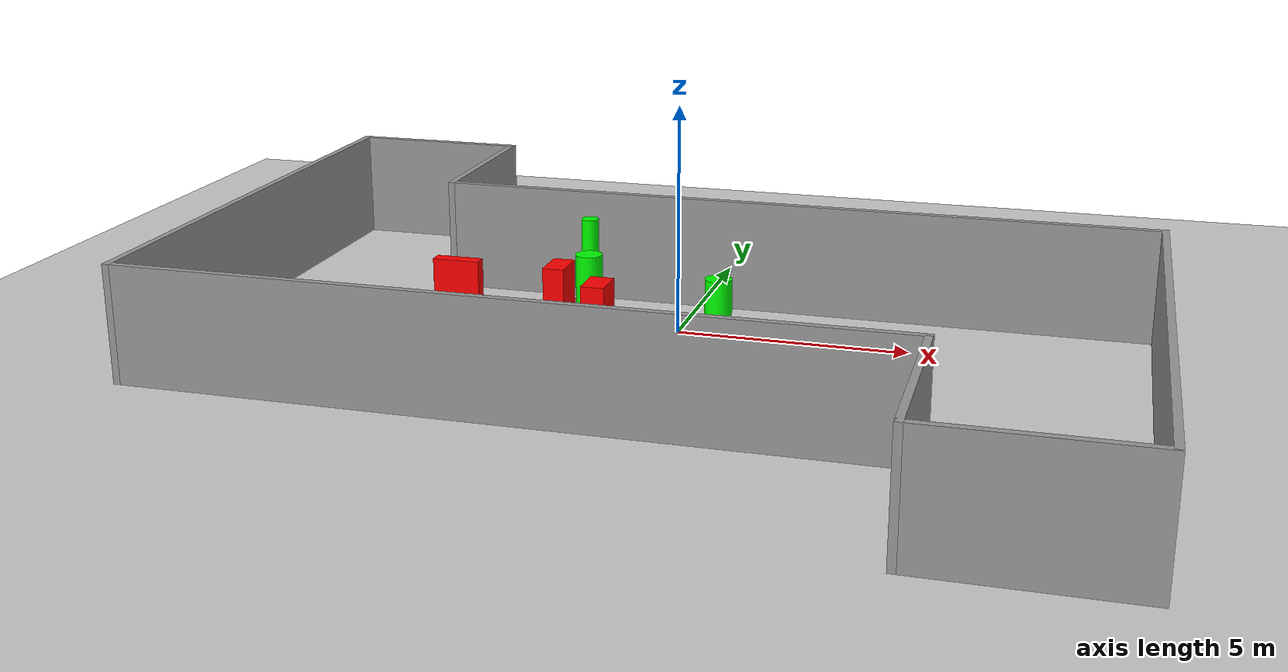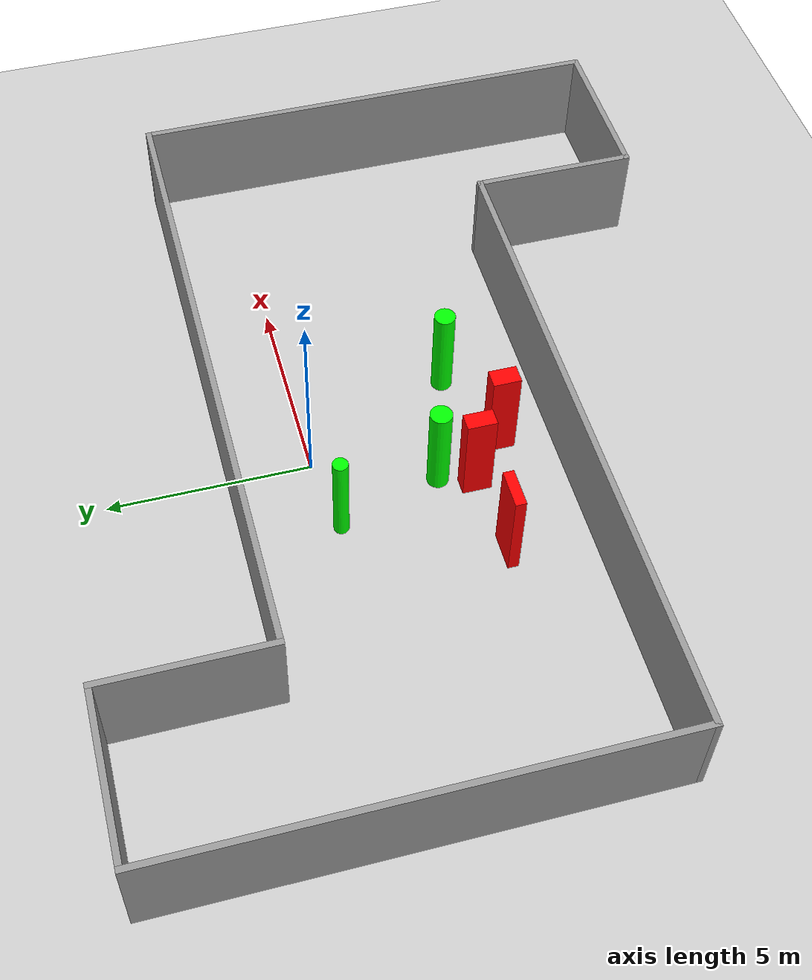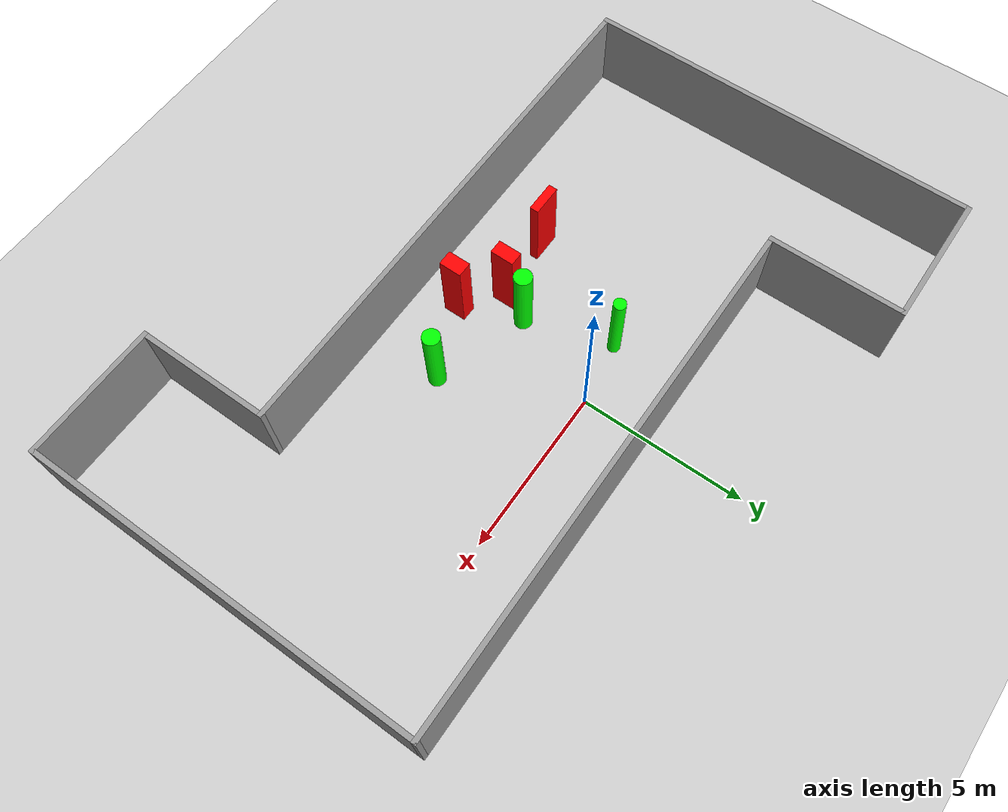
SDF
<sdf version="1.7">
 <world name="default">
  <light name="sun" type="directional">
   <pose>0 0 10 0 -0 0</pose>
   <diffuse>0.8 0.8 0.8 1</diffuse>
   <specular>0.2 0.2 0.2 1</specular>
   <attenuation>
    <range>1000</range>
    <constant>0.9</constant>
    <linear>0.01</linear>
    <quadratic>0.001</quadratic>
   </attenuation>
   <direction>-0.5 0.1 -0.9</direction>
   <spot><inner_angle>0</inner_angle><outer_angle>0</outer_angle><falloff>0</falloff></spot>
  </light>
  <model name="ground_plane">
   <static>1</static>
   <link name="link">
    <collision name="collision">
     <geometry><plane><normal>0 0 1</normal><size>100 100</size></plane></geometry>
     <surface>
      <contact><collide_bitmask>65535</collide_bitmask></contact>
      <friction><ode><mu>100</mu><mu2>50</mu2></ode></friction>
     </surface>
    </collision>
    <visual name="visual">
     <cast_shadows>0</cast_shadows>
     <geometry><plane><normal>0 0 1</normal><size>100 100</size></plane></geometry>
     <material>
      <script><uri>file://media/materials/scripts/gazebo.material</uri><name>Gazebo/Grey</name></script>
     </material>
    </visual>
   </link>
  </model>
  <gravity>0 0 -9.8</gravity>
  <magnetic_field>6e-06 2.3e-05 -4.2e-05</magnetic_field>
  <atmosphere type="adiabatic"/>
  <physics type="ode">
   <max_step_size>0.001</max_step_size>
   <real_time_factor>1</real_time_factor>
   <real_time_update_rate>1000</real_time_update_rate>
  </physics>
  <scene><ambient>0.4 0.4 0.4 1</ambient><background>0.7 0.7 0.7 1</background><shadows>1</shadows></scene>
  <spherical_coordinates>
   <surface_model>EARTH_WGS84</surface_model>
   <latitude_deg>0</latitude_deg>
   <longitude_deg>0</longitude_deg>
   <elevation>0</elevation>
   <heading_deg>0</heading_deg>
  </spherical_coordinates>
  <model name="my_base_walls">
   <link name="Wall_13">
    <collision name="Wall_13_Collision">
     <geometry><box><size>12.15 0.15 2.5</size></box></geometry>
     <pose>0 0 1.25 0 -0 0</pose>
    </collision>
    <visual name="Wall_13_Visual">
     <pose>0 0 1.25 0 -0 0</pose>
     <geometry><box><size>12.15 0.15 2.5</size></box></geometry>
     <material>
      <script><uri>file://media/materials/scripts/gazebo.material</uri><name>Gazebo/Grey</name></script>
      <ambient>1 1 1 1</ambient>
     </material>
     <meta><layer>0</layer></meta>
    </visual>
    <pose>10 -2 0 0 -0 1.5708</pose>
   </link>
   <link name="Wall_15">
    <collision name="Wall_15_Collision">
     <geometry><box><size>16.15 0.15 2.5</size></box></geometry>
     <pose>0 0 1.25 0 -0 0</pose>
    </collision>
    <visual name="Wall_15_Visual">
     <pose>0 0 1.25 0 -0 0</pose>
     <geometry><box><size>16.15 0.15 2.5</size></box></geometry>
     <material>
      <script><uri>file://media/materials/scripts/gazebo.material</uri><name>Gazebo/Grey</name></script>
      <ambient>1 1 1 1</ambient>
     </material>
     <meta><layer>0</layer></meta>
    </visual>
    <pose>2 4 0 0 -0 3.14159</pose>
   </link>
   <link name="Wall_17">
    <collision name="Wall_17_Collision">
     <geometry><box><size>4.15 0.15 2.5</size></box></geometry>
     <pose>0 0 1.25 0 -0 0</pose>
    </collision>
    <visual name="Wall_17_Visual">
     <pose>0 0 1.25 0 -0 0</pose>
     <geometry><box><size>4.15 0.15 2.5</size></box></geometry>
     <material>
      <script><uri>file://media/materials/scripts/gazebo.material</uri><name>Gazebo/Grey</name></script>
      <ambient>1 1 1 1</ambient>
     </material>
     <meta><layer>0</layer></meta>
    </visual>
    <pose>6 -6 0 0 -0 -1.5708</pose>
   </link>
   <link name="Wall_19">
    <collision name="Wall_19_Collision">
     <geometry><box><size>12.15 0.15 2.5</size></box></geometry>
     <pose>0 0 1.25 0 -0 0</pose>
    </collision>
    <visual name="Wall_19_Visual">
     <pose>0 0 1.25 0 -0 0</pose>
     <geometry><box><size>12.15 0.15 2.5</size></box></geometry>
     <material>
      <script><uri>file://media/materials/scripts/gazebo.material</uri><name>Gazebo/Grey</name></script>
      <ambient>1 1 1 1</ambient>
     </material>
     <meta><layer>0</layer></meta>
    </visual>
    <pose>-10 2 0 0 -0 1.5708</pose>
   </link>
   <link name="Wall_21">
    <collision name="Wall_21_Collision">
     <geometry><box><size>4.15 0.15 2.5</size></box></geometry>
     <pose>0 0 1.25 0 -0 0</pose>
    </collision>
    <visual name="Wall_21_Visual">
     <pose>0 0 1.25 0 -0 0</pose>
     <geometry><box><size>4.15 0.15 2.5</size></box></geometry>
     <material>
      <script><uri>file://media/materials/scripts/gazebo.material</uri><name>Gazebo/Grey</name></script>
      <ambient>1 1 1 1</ambient>
     </material>
     <meta><layer>0</layer></meta>
    </visual>
    <pose>-8 8 0 0 -0 0</pose>
   </link>
   <link name="Wall_23">
    <collision name="Wall_23_Collision">
     <geometry><box><size>4.15 0.15 2.5</size></box></geometry>
     <pose>0 0 1.25 0 -0 0</pose>
    </collision>
    <visual name="Wall_23_Visual">
     <pose>0 0 1.25 0 -0 0</pose>
     <geometry><box><size>4.15 0.15 2.5</size></box></geometry>
     <material>
      <script><uri>file://media/materials/scripts/gazebo.material</uri><name>Gazebo/Grey</name></script>
      <ambient>1 1 1 1</ambient>
     </material>
     <meta><layer>0</layer></meta>
    </visual>
    <pose>-6 6 0 0 -0 -1.5708</pose>
   </link>
   <link name="Wall_25">
    <collision name="Wall_25_Collision">
     <geometry><box><size>4.15 0.15 2.5</size></box></geometry>
     <pose>0 0 1.25 0 -0 0</pose>
    </collision>
    <visual name="Wall_25_Visual">
     <pose>0 0 1.25 0 -0 0</pose>
     <geometry><box><size>4.15 0.15 2.5</size></box></geometry>
     <material>
      <script><uri>file://media/materials/scripts/gazebo.material</uri><name>Gazebo/Grey</name></script>
      <ambient>1 1 1 1</ambient>
     </material>
     <meta><layer>0</layer></meta>
    </visual>
    <pose>8 -8 0 0 -0 0</pose>
   </link>
   <link name="Wall_9">
    <collision name="Wall_9_Collision">
     <geometry><box><size>16.15 0.15 2.5</size></box></geometry>
     <pose>0 0 1.25 0 -0 0</pose>
    </collision>
    <visual name="Wall_9_Visual">
     <pose>0 0 1.25 0 -0 0</pose>
     <geometry><box><size>16.15 0.15 2.5</size></box></geometry>
     <material>
      <script><uri>file://media/materials/scripts/gazebo.material</uri><name>Gazebo/Grey</name></script>
      <ambient>1 1 1 1</ambient>
     </material>
     <meta><layer>0</layer></meta>
    </visual>
    <pose>-2 -4 0 0 -0 3.14159</pose>
   </link>
   <static>1</static>
   <pose>-0 -2 0 0 -0 0</pose>
  </model>
  <model name="cylinder1">
   <static>1</static>
   <link name="link">
    <inertial>
     <mass>1</mass>
     <inertia><ixx>0.5</ixx><ixy>0</ixy><ixz>0</ixz><iyy>0.5</iyy><iyz>0</iyz><izz>1</izz></inertia>
    </inertial>
    <collision name="collision">
     <geometry><cylinder><radius>0.26054428565090804</radius><length>2.5</length></cylinder></geometry>
    </collision>
    <visual name="visual">
     <geometry><cylinder><radius>0.26054428565090804</radius><length>2.5</length></cylinder></geometry>
     <material>
      <ambient>0 1 0 1</ambient>
      <diffuse>0 1 0 1</diffuse>
      <specular>0.1 0.1 0.1 1</specular>
      <emissive>0 0 0 0</emissive>
     </material>
    </visual>
   </link>
   <pose>1.7709902261790829 -3.8035148584809306 1.25 0 0 0</pose>
  </model>
  <model name="cylinder2">
   <static>1</static>
   <link name="link">
    <inertial>
     <mass>1</mass>
     <inertia><ixx>0.5</ixx><ixy>0</ixy><ixz>0</ixz><iyy>0.5</iyy><iyz>0</iyz><izz>1</izz></inertia>
    </inertial>
    <collision name="collision">
     <geometry><cylinder><radius>0.18647864761817026</radius><length>2.5</length></cylinder></geometry>
    </collision>
    <visual name="visual">
     <geometry><cylinder><radius>0.18647864761817026</radius><length>2.5</length></cylinder></geometry>
     <material>
      <ambient>0 1 0 1</ambient>
      <diffuse>0 1 0 1</diffuse>
      <specular>0.1 0.1 0.1 1</specular>
      <emissive>0 0 0 0</emissive>
     </material>
    </visual>
   </link>
   <pose>-1.8983386912242661 -0.28690323214262303 1.25 0 0 0</pose>
  </model>
  <model name="cylinder3">
   <static>1</static>
   <link name="link">
    <inertial>
     <mass>1</mass>
     <inertia><ixx>0.5</ixx><ixy>0</ixy><ixz>0</ixz><iyy>0.5</iyy><iyz>0</iyz><izz>1</izz></inertia>
    </inertial>
    <collision name="collision">
     <geometry><cylinder><radius>0.26933958642345557</radius><length>2.5</length></cylinder></geometry>
    </collision>
    <visual name="visual">
     <geometry><cylinder><radius>0.26933958642345557</radius><length>2.5</length></cylinder></geometry>
     <material>
      <ambient>0 1 0 1</ambient>
      <diffuse>0 1 0 1</diffuse>
      <specular>0.1 0.1 0.1 1</specular>
      <emissive>0 0 0 0</emissive>
     </material>
    </visual>
   </link>
   <pose>-1.1021507416292762 -2.8747762528232093 1.25 0 0 0</pose>
  </model>
  <model name="box1">
   <static>1</static>
   <link name="link">
    <inertial>
     <mass>1</mass>
     <inertia><ixx>0.083</ixx><ixy>0</ixy><ixz>0</ixz><iyy>0.083</iyy><iyz>0</iyz><izz>0.083</izz></inertia>
    </inertial>
    <collision name="collision">
     <geometry><box><size>0.42192546330397174 0.7176680017195918 2.5</size></box></geometry>
    </collision>
    <visual name="visual">
     <geometry><box><size>0.42192546330397174 0.7176680017195918 2.5</size></box></geometry>
     <material>
      <ambient>1 0 0 1</ambient>
      <diffuse>1 0 0 1</diffuse>
      <specular>0.1 0.1 0.1 1</specular>
      <emissive>0 0 0 0</emissive>
     </material>
    </visual>
    <sensor name="my_contact" type="contact">
     <contact><collision>box_collision</collision><topic>__default_topic__</topic></contact>
    </sensor>
   </link>
   <pose>-1.4627667937801458 -3.695534137634956 1.25 0 0 0</pose>
  </model>
  <model name="box2">
   <static>1</static>
   <link name="link">
    <inertial>
     <mass>1</mass>
     <inertia><ixx>0.083</ixx><ixy>0</ixy><ixz>0</ixz><iyy>0.083</iyy><iyz>0</iyz><izz>0.083</izz></inertia>
    </inertial>
    <collision name="collision">
     <geometry><box><size>0.45472150162731434 0.685580271601604 2.5</size></box></geometry>
    </collision>
    <visual name="visual">
     <geometry><box><size>0.45472150162731434 0.685580271601604 2.5</size></box></geometry>
     <material>
      <ambient>1 0 0 1</ambient>
      <diffuse>1 0 0 1</diffuse>
      <specular>0.1 0.1 0.1 1</specular>
      <emissive>0 0 0 0</emissive>
     </material>
    </visual>
    <sensor name="my_contact" type="contact">
     <contact><collision>box_collision</collision><topic>__default_topic__</topic></contact>
    </sensor>
   </link>
   <pose>-0.3816716626077916 -4.632056678126546 1.25 0 0 0</pose>
  </model>
  <model name="box3">
   <static>1</static>
   <link name="link">
    <inertial>
     <mass>1</mass>
     <inertia><ixx>0.083</ixx><ixy>0</ixy><ixz>0</ixz><iyy>0.083</iyy><iyz>0</iyz><izz>0.083</izz></inertia>
    </inertial>
    <collision name="collision">
     <geometry><box><size>0.9377349760062972 0.26601684630246136 2.5</size></box></geometry>
    </collision>
    <visual name="visual">
     <geometry><box><size>0.9377349760062972 0.26601684630246136 2.5</size></box></geometry>
     <material>
      <ambient>1 0 0 1</ambient>
      <diffuse>1 0 0 1</diffuse>
      <specular>0.1 0.1 0.1 1</specular>
      <emissive>0 0 0 0</emissive>
     </material>
    </visual>
    <sensor name="my_contact" type="contact">
     <contact><collision>box_collision</collision><topic>__default_topic__</topic></contact>
    </sensor>
   </link>
   <pose>-3.5037410885556484 -3.86211367223736 1.25 0 0 0</pose>
  </model>
 </world>
</sdf>
